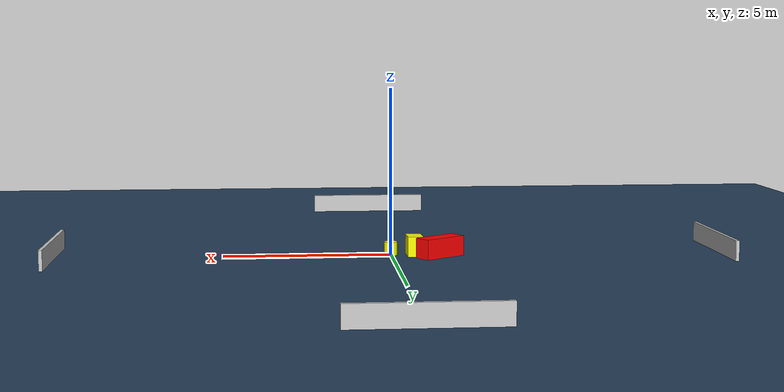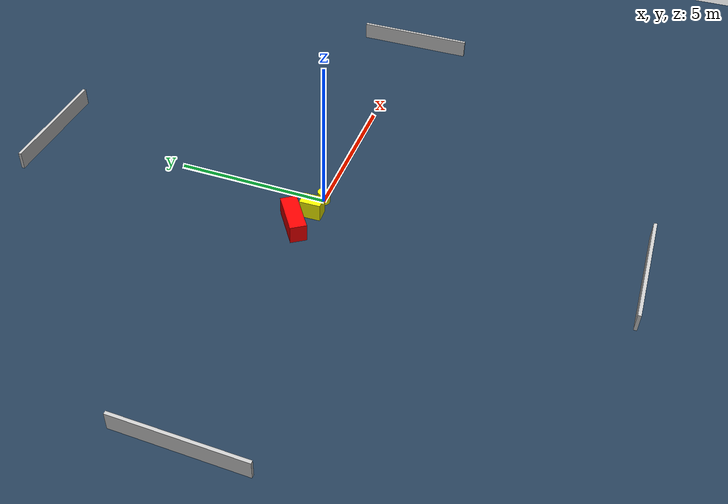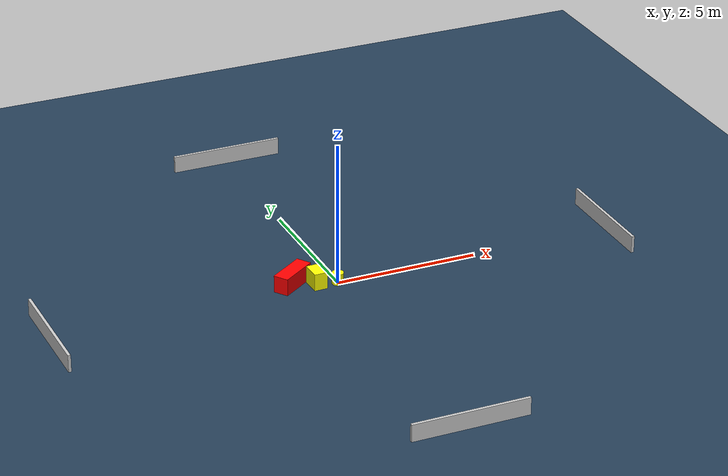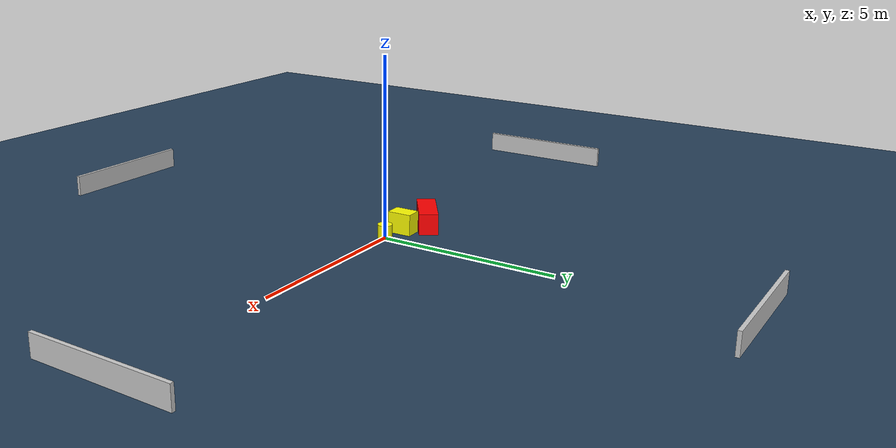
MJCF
<?xml version="1.0" ?>
<mujoco model="generated_environment">
  <option timestep="0.01" integrator="RK4" cone="elliptic"/>
  <default>
    <geom density="1"/>
  </default>
  <asset>
    <texture builtin="gradient" height="3072" name="skybox" rgb1="0.3 0.5 0.7" rgb2="0 0 0" type="skybox" width="512"/>
    <texture builtin="checker" height="300" name="groundplane" rgb1="0.2 0.3 0.4" rgb2="0.1 0.2 0.3" type="2d" width="300"/>
    <material name="groundplane" reflectance="0.2" texrepeat="5 5" texture="groundplane"/>
  </asset>
  <worldbody>
    <light dir="0 0 -1" directional="true" pos="0 0 1.5"/>
    <geom condim="3" friction="0.5 0.005 0.001" material="groundplane" name="floor" pos="0 0 0" size="0 0 0.05" type="plane"/>
    <body name="walls">
      <geom name="wall_1" condim="4" pos="-10.0 0.0 0.3" rgba="0.800000011920929 0.800000011920929 0.800000011920929 1.0" size="0.05 2.0 0.3" type="box"/>
      <geom name="wall_2" condim="4" pos="10.0 0.0 0.3" rgba="0.800000011920929 0.800000011920929 0.800000011920929 1.0" size="0.05 2.0 0.3" type="box"/>
      <geom name="wall_3" condim="4" pos="0.0 -10.0 0.3" rgba="0.800000011920929 0.800000011920929 0.800000011920929 1.0" size="2.0 0.05 0.3" type="box"/>
      <geom name="wall_4" condim="4" pos="0.0 10.0 0.3" rgba="0.800000011920929 0.800000011920929 0.800000011920929 1.0" size="2.0 0.05 0.3" type="box"/>
    </body>
    <body name="robot">
      <joint name="joint_x" type="slide" pos="0 0 0" axis="1 0 0"/>
      <joint name="joint_y" type="slide" pos="0 0 0" axis="0 1 0"/>
      <geom name="robot" type="cylinder" pos="0.0 0.0 0.2" size="0.2 0.2 0.0" mass="5.0" friction="1.0 0.005 0.0001" condim="4" rgba="1.0 1.0 0.0 1.0"/>
    </body>
    <body name="obstacle_1_movable">
      <geom name="obstacle_1_movable" condim="4" pos="-0.6994297754137463 0.1357849119860584 0.3" euler="0 0 181.75941420790195" friction="0.0 0.005 0.001" rgba="1.0 1.0 0.0 1.0" size="0.22978269670315785 0.3404287107023448 0.3" type="box" mass="0.1"/>
      <joint type="free"/>
    </body>
    <body name="obstacle_2_static">
      <geom name="obstacle_2_static" condim="4" pos="-1.4339155258510914 0.4619656333034795 0.3" euler="0 0 34.703235348527954" friction="0.0 0.005 0.001" rgba="1.0 0.0 0.0 1.0" size="0.7131912958211843 0.26507210413061605 0.3" type="box"/>
    </body>
  </worldbody>
  <actuator>
    <motor name="actuator_x" joint="joint_x" gear="1" ctrlrange="-1 1"/>
    <motor name="actuator_y" joint="joint_y" gear="1" ctrlrange="-1 1"/>
  </actuator>
</mujoco>
